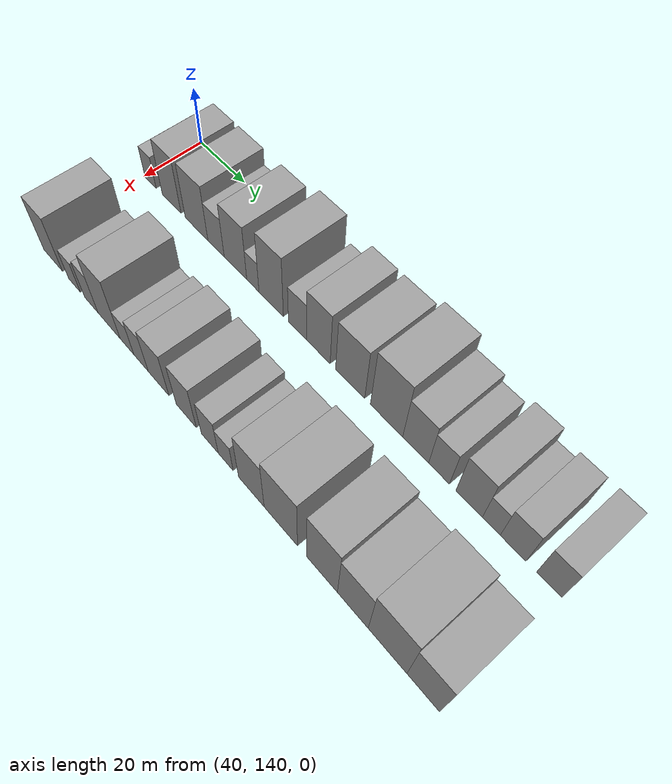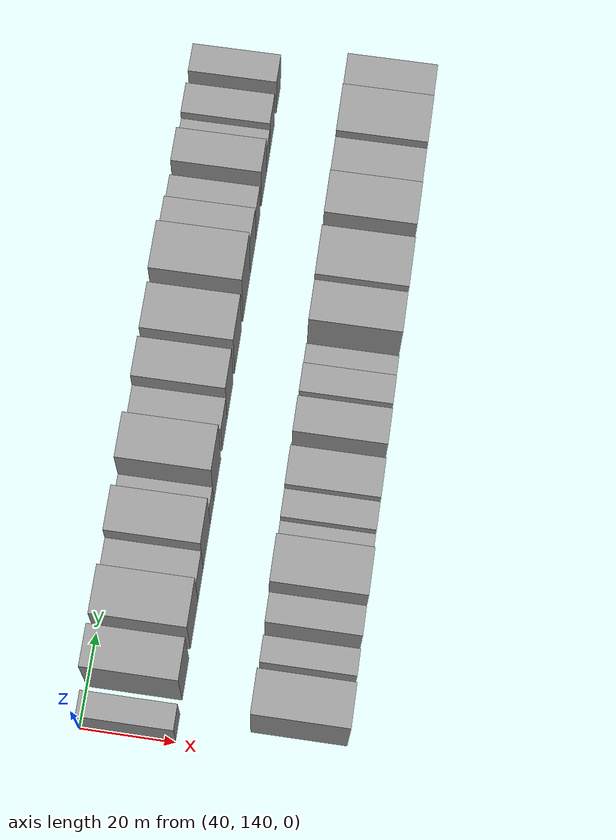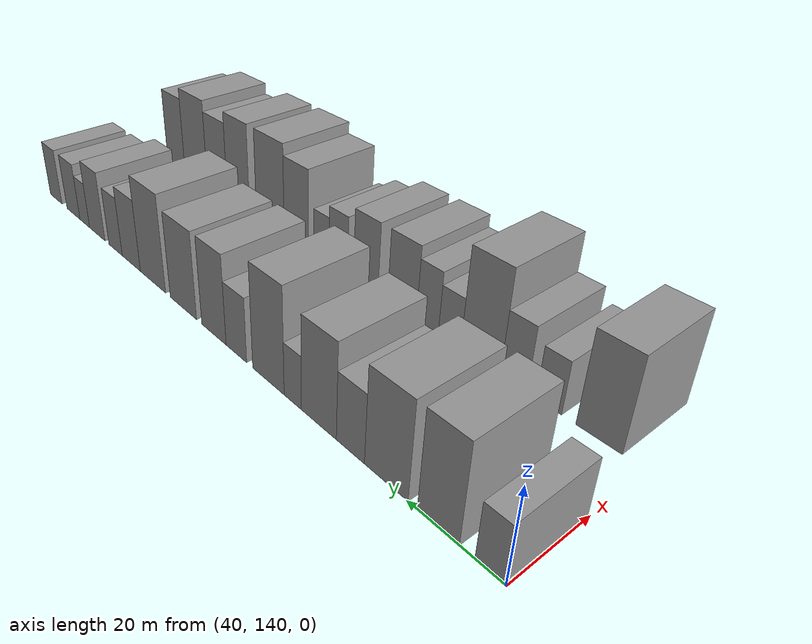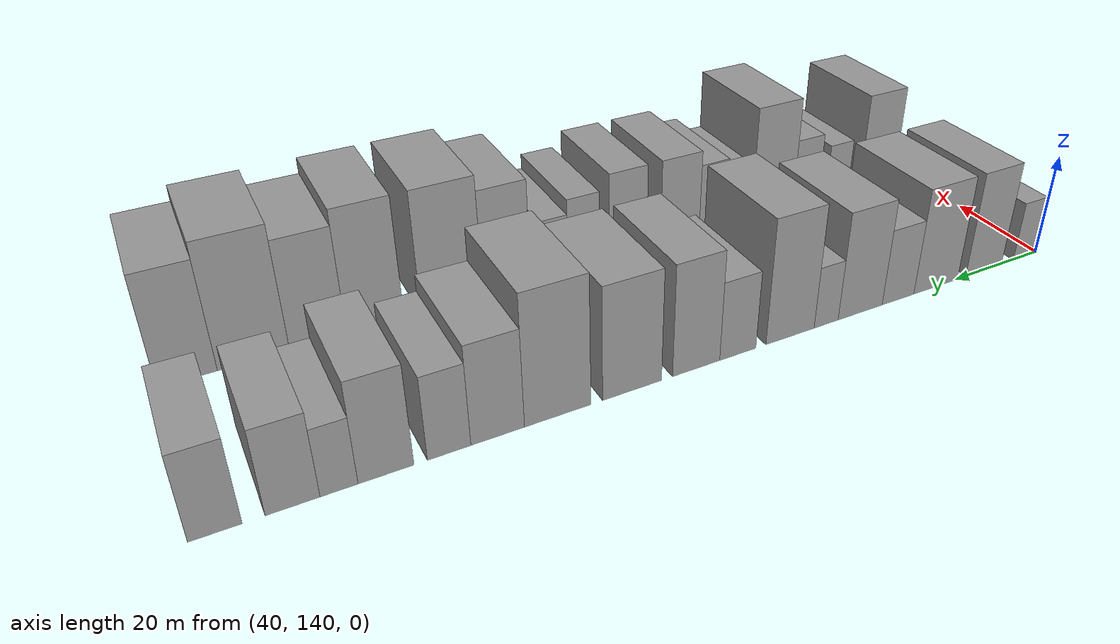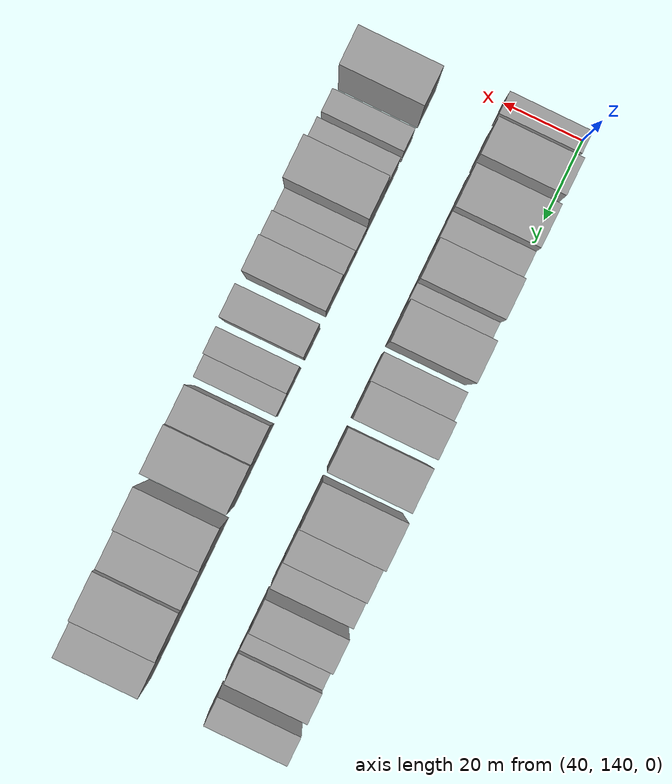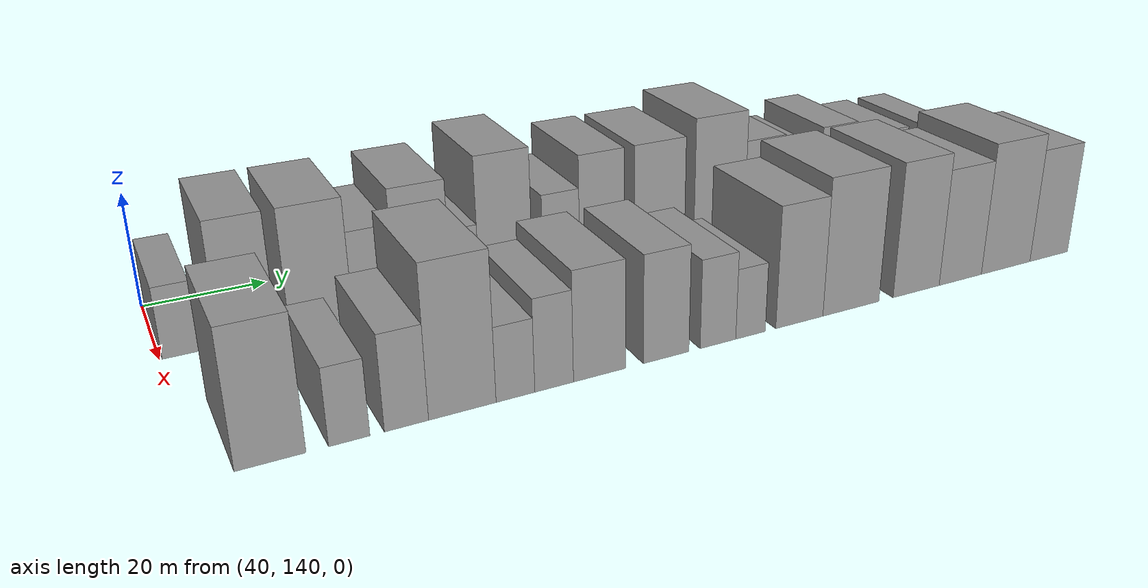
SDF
<sdf version="1.6">
 <world name="default">
  <model name="building_50">
   <static>1</static>
   <pose>50.0000 143.1332 0 0.000000 0.000000 0.000000</pose>
   <link name="link">
    <pose>0 0 6.00 0 0 0</pose>
    <collision name="collision"><geometry><box><size>20.0000 5.4177 12.0000</size></box></geometry></collision>
    <visual name="visual">
     <cast_shadows>0</cast_shadows>
     <geometry><box><size>20.0000 5.4177 12.0000</size></box></geometry>
     <material>
      <script>
       <uri>model://grey_wall/materials/scripts</uri>
       <uri>model://grey_wall/materials/textures</uri>
       <name>vrc/grey_wall</name>
      </script>
     </material>
    </visual>
   </link>
  </model>
  <model name="building_51">
   <static>1</static>
   <pose>50.0000 153.2381 0 0.000000 0.000000 0.000000</pose>
   <link name="link">
    <pose>0 0 10.50 0 0 0</pose>
    <collision name="collision"><geometry><box><size>20.0000 8.7923 21.0000</size></box></geometry></collision>
    <visual name="visual">
     <cast_shadows>0</cast_shadows>
     <geometry><box><size>20.0000 8.7923 21.0000</size></box></geometry>
     <material>
      <script>
       <uri>model://grey_wall/materials/scripts</uri>
       <uri>model://grey_wall/materials/textures</uri>
       <name>vrc/grey_wall</name>
      </script>
     </material>
    </visual>
   </link>
  </model>
  <model name="building_52">
   <static>1</static>
   <pose>50.0000 164.7484 0 0.000000 0.000000 0.000000</pose>
   <link name="link">
    <pose>0 0 10.50 0 0 0</pose>
    <collision name="collision"><geometry><box><size>20.0000 10.2283 21.0000</size></box></geometry></collision>
    <visual name="visual">
     <cast_shadows>0</cast_shadows>
     <geometry><box><size>20.0000 10.2283 21.0000</size></box></geometry>
     <material>
      <script>
       <uri>model://grey_wall/materials/scripts</uri>
       <uri>model://grey_wall/materials/textures</uri>
       <name>vrc/grey_wall</name>
      </script>
     </material>
    </visual>
   </link>
  </model>
  <model name="building_53">
   <static>1</static>
   <pose>50.0000 173.4440 0 0.000000 0.000000 0.000000</pose>
   <link name="link">
    <pose>0 0 7.50 0 0 0</pose>
    <collision name="collision"><geometry><box><size>20.0000 7.1629 15.0000</size></box></geometry></collision>
    <visual name="visual">
     <cast_shadows>0</cast_shadows>
     <geometry><box><size>20.0000 7.1629 15.0000</size></box></geometry>
     <material>
      <script>
       <uri>model://grey_wall/materials/scripts</uri>
       <uri>model://grey_wall/materials/textures</uri>
       <name>vrc/grey_wall</name>
      </script>
     </material>
    </visual>
   </link>
  </model>
  <model name="building_54">
   <static>1</static>
   <pose>50.0000 181.8233 0 0.000000 0.000000 0.000000</pose>
   <link name="link">
    <pose>0 0 10.50 0 0 0</pose>
    <collision name="collision"><geometry><box><size>20.0000 9.5958 21.0000</size></box></geometry></collision>
    <visual name="visual">
     <cast_shadows>0</cast_shadows>
     <geometry><box><size>20.0000 9.5958 21.0000</size></box></geometry>
     <material>
      <script>
       <uri>model://grey_wall/materials/scripts</uri>
       <uri>model://grey_wall/materials/textures</uri>
       <name>vrc/grey_wall</name>
      </script>
     </material>
    </visual>
   </link>
  </model>
  <model name="building_55">
   <static>1</static>
   <pose>50.0000 189.1549 0 0.000000 0.000000 0.000000</pose>
   <link name="link">
    <pose>0 0 6.00 0 0 0</pose>
    <collision name="collision"><geometry><box><size>20.0000 5.0674 12.0000</size></box></geometry></collision>
    <visual name="visual">
     <cast_shadows>0</cast_shadows>
     <geometry><box><size>20.0000 5.0674 12.0000</size></box></geometry>
     <material>
      <script>
       <uri>model://grey_wall/materials/scripts</uri>
       <uri>model://grey_wall/materials/textures</uri>
       <name>vrc/grey_wall</name>
      </script>
     </material>
    </visual>
   </link>
  </model>
  <model name="building_56">
   <static>1</static>
   <pose>50.0000 196.6018 0 0.000000 0.000000 0.000000</pose>
   <link name="link">
    <pose>0 0 12.00 0 0 0</pose>
    <collision name="collision"><geometry><box><size>20.0000 9.8264 24.0000</size></box></geometry></collision>
    <visual name="visual">
     <cast_shadows>0</cast_shadows>
     <geometry><box><size>20.0000 9.8264 24.0000</size></box></geometry>
     <material>
      <script>
       <uri>model://grey_wall/materials/scripts</uri>
       <uri>model://grey_wall/materials/textures</uri>
       <name>vrc/grey_wall</name>
      </script>
     </material>
    </visual>
   </link>
  </model>
  <model name="building_57">
   <static>1</static>
   <pose>50.0000 207.0331 0 0.000000 0.000000 0.000000</pose>
   <link name="link">
    <pose>0 0 7.50 0 0 0</pose>
    <collision name="collision"><geometry><box><size>20.0000 7.0361 15.0000</size></box></geometry></collision>
    <visual name="visual">
     <cast_shadows>0</cast_shadows>
     <geometry><box><size>20.0000 7.0361 15.0000</size></box></geometry>
     <material>
      <script>
       <uri>model://grey_wall/materials/scripts</uri>
       <uri>model://grey_wall/materials/textures</uri>
       <name>vrc/grey_wall</name>
      </script>
     </material>
    </visual>
   </link>
  </model>
  <model name="building_58">
   <static>1</static>
   <pose>50.0000 214.9701 0 0.000000 0.000000 0.000000</pose>
   <link name="link">
    <pose>0 0 10.50 0 0 0</pose>
    <collision name="collision"><geometry><box><size>20.0000 8.8380 21.0000</size></box></geometry></collision>
    <visual name="visual">
     <cast_shadows>0</cast_shadows>
     <geometry><box><size>20.0000 8.8380 21.0000</size></box></geometry>
     <material>
      <script>
       <uri>model://grey_wall/materials/scripts</uri>
       <uri>model://grey_wall/materials/textures</uri>
       <name>vrc/grey_wall</name>
      </script>
     </material>
    </visual>
   </link>
  </model>
  <model name="building_59">
   <static>1</static>
   <pose>50.0000 226.6173 0 0.000000 0.000000 0.000000</pose>
   <link name="link">
    <pose>0 0 10.50 0 0 0</pose>
    <collision name="collision"><geometry><box><size>20.0000 10.4563 21.0000</size></box></geometry></collision>
    <visual name="visual">
     <cast_shadows>0</cast_shadows>
     <geometry><box><size>20.0000 10.4563 21.0000</size></box></geometry>
     <material>
      <script>
       <uri>model://grey_wall/materials/scripts</uri>
       <uri>model://grey_wall/materials/textures</uri>
       <name>vrc/grey_wall</name>
      </script>
     </material>
    </visual>
   </link>
  </model>
  <model name="building_60">
   <static>1</static>
   <pose>50.0000 239.3656 0 0.000000 0.000000 0.000000</pose>
   <link name="link">
    <pose>0 0 12.00 0 0 0</pose>
    <collision name="collision"><geometry><box><size>20.0000 11.0403 24.0000</size></box></geometry></collision>
    <visual name="visual">
     <cast_shadows>0</cast_shadows>
     <geometry><box><size>20.0000 11.0403 24.0000</size></box></geometry>
     <material>
      <script>
       <uri>model://grey_wall/materials/scripts</uri>
       <uri>model://grey_wall/materials/textures</uri>
       <name>vrc/grey_wall</name>
      </script>
     </material>
    </visual>
   </link>
  </model>
  <model name="building_61">
   <static>1</static>
   <pose>50.0000 249.1334 0 0.000000 0.000000 0.000000</pose>
   <link name="link">
    <pose>0 0 9.00 0 0 0</pose>
    <collision name="collision"><geometry><box><size>20.0000 8.4952 18.0000</size></box></geometry></collision>
    <visual name="visual">
     <cast_shadows>0</cast_shadows>
     <geometry><box><size>20.0000 8.4952 18.0000</size></box></geometry>
     <material>
      <script>
       <uri>model://grey_wall/materials/scripts</uri>
       <uri>model://grey_wall/materials/textures</uri>
       <name>vrc/grey_wall</name>
      </script>
     </material>
    </visual>
   </link>
  </model>
  <model name="building_62">
   <static>1</static>
   <pose>50.0000 256.6926 0 0.000000 0.000000 0.000000</pose>
   <link name="link">
    <pose>0 0 7.50 0 0 0</pose>
    <collision name="collision"><geometry><box><size>20.0000 6.6233 15.0000</size></box></geometry></collision>
    <visual name="visual">
     <cast_shadows>0</cast_shadows>
     <geometry><box><size>20.0000 6.6233 15.0000</size></box></geometry>
     <material>
      <script>
       <uri>model://grey_wall/materials/scripts</uri>
       <uri>model://grey_wall/materials/textures</uri>
       <name>vrc/grey_wall</name>
      </script>
     </material>
    </visual>
   </link>
  </model>
  <model name="building_63">
   <static>1</static>
   <pose>50.0000 266.0494 0 0.000000 0.000000 0.000000</pose>
   <link name="link">
    <pose>0 0 9.00 0 0 0</pose>
    <collision name="collision"><geometry><box><size>20.0000 8.0903 18.0000</size></box></geometry></collision>
    <visual name="visual">
     <cast_shadows>0</cast_shadows>
     <geometry><box><size>20.0000 8.0903 18.0000</size></box></geometry>
     <material>
      <script>
       <uri>model://grey_wall/materials/scripts</uri>
       <uri>model://grey_wall/materials/textures</uri>
       <name>vrc/grey_wall</name>
      </script>
     </material>
    </visual>
   </link>
  </model>
  <model name="building_64">
   <static>1</static>
   <pose>50.0000 272.7504 0 0.000000 0.000000 0.000000</pose>
   <link name="link">
    <pose>0 0 6.00 0 0 0</pose>
    <collision name="collision"><geometry><box><size>20.0000 5.3117 12.0000</size></box></geometry></collision>
    <visual name="visual">
     <cast_shadows>0</cast_shadows>
     <geometry><box><size>20.0000 5.3117 12.0000</size></box></geometry>
     <material>
      <script>
       <uri>model://grey_wall/materials/scripts</uri>
       <uri>model://grey_wall/materials/textures</uri>
       <name>vrc/grey_wall</name>
      </script>
     </material>
    </visual>
   </link>
  </model>
  <model name="building_65">
   <static>1</static>
   <pose>50.0000 279.1155 0 0.000000 0.000000 0.000000</pose>
   <link name="link">
    <pose>0 0 7.50 0 0 0</pose>
    <collision name="collision"><geometry><box><size>20.0000 7.4184 15.0000</size></box></geometry></collision>
    <visual name="visual">
     <cast_shadows>0</cast_shadows>
     <geometry><box><size>20.0000 7.4184 15.0000</size></box></geometry>
     <material>
      <script>
       <uri>model://grey_wall/materials/scripts</uri>
       <uri>model://grey_wall/materials/textures</uri>
       <name>vrc/grey_wall</name>
      </script>
     </material>
    </visual>
   </link>
  </model>
  <model name="building_66">
   <static>1</static>
   <pose>50.0000 289.3066 0 0.000000 0.000000 0.000000</pose>
   <link name="link">
    <pose>0 0 7.50 0 0 0</pose>
    <collision name="collision"><geometry><box><size>20.0000 6.9639 15.0000</size></box></geometry></collision>
    <visual name="visual">
     <cast_shadows>0</cast_shadows>
     <geometry><box><size>20.0000 6.9639 15.0000</size></box></geometry>
     <material>
      <script>
       <uri>model://grey_wall/materials/scripts</uri>
       <uri>model://grey_wall/materials/textures</uri>
       <name>vrc/grey_wall</name>
      </script>
     </material>
    </visual>
   </link>
  </model>
  <model name="building_114">
   <static>1</static>
   <pose>85.0000 149.0062 0 0.000000 0.000000 0.000000</pose>
   <link name="link">
    <pose>0 0 10.50 0 0 0</pose>
    <collision name="collision"><geometry><box><size>20.0000 9.2929 21.0000</size></box></geometry></collision>
    <visual name="visual">
     <cast_shadows>0</cast_shadows>
     <geometry><box><size>20.0000 9.2929 21.0000</size></box></geometry>
     <material>
      <script>
       <uri>model://grey_wall/materials/scripts</uri>
       <uri>model://grey_wall/materials/textures</uri>
       <name>vrc/grey_wall</name>
      </script>
     </material>
    </visual>
   </link>
  </model>
  <model name="building_115">
   <static>1</static>
   <pose>85.0000 159.4780 0 0.000000 0.000000 0.000000</pose>
   <link name="link">
    <pose>0 0 6.00 0 0 0</pose>
    <collision name="collision"><geometry><box><size>20.0000 5.6508 12.0000</size></box></geometry></collision>
    <visual name="visual">
     <cast_shadows>0</cast_shadows>
     <geometry><box><size>20.0000 5.6508 12.0000</size></box></geometry>
     <material>
      <script>
       <uri>model://grey_wall/materials/scripts</uri>
       <uri>model://grey_wall/materials/textures</uri>
       <name>vrc/grey_wall</name>
      </script>
     </material>
    </visual>
   </link>
  </model>
  <model name="building_116">
   <static>1</static>
   <pose>85.0000 167.4500 0 0.000000 0.000000 0.000000</pose>
   <link name="link">
    <pose>0 0 7.50 0 0 0</pose>
    <collision name="collision"><geometry><box><size>20.0000 6.2932 15.0000</size></box></geometry></collision>
    <visual name="visual">
     <cast_shadows>0</cast_shadows>
     <geometry><box><size>20.0000 6.2932 15.0000</size></box></geometry>
     <material>
      <script>
       <uri>model://grey_wall/materials/scripts</uri>
       <uri>model://grey_wall/materials/textures</uri>
       <name>vrc/grey_wall</name>
      </script>
     </material>
    </visual>
   </link>
  </model>
  <model name="building_117">
   <static>1</static>
   <pose>85.0000 175.6063 0 0.000000 0.000000 0.000000</pose>
   <link name="link">
    <pose>0 0 12.00 0 0 0</pose>
    <collision name="collision"><geometry><box><size>20.0000 10.0194 24.0000</size></box></geometry></collision>
    <visual name="visual">
     <cast_shadows>0</cast_shadows>
     <geometry><box><size>20.0000 10.0194 24.0000</size></box></geometry>
     <material>
      <script>
       <uri>model://grey_wall/materials/scripts</uri>
       <uri>model://grey_wall/materials/textures</uri>
       <name>vrc/grey_wall</name>
      </script>
     </material>
    </visual>
   </link>
  </model>
  <model name="building_118">
   <static>1</static>
   <pose>85.0000 183.6101 0 0.000000 0.000000 0.000000</pose>
   <link name="link">
    <pose>0 0 6.00 0 0 0</pose>
    <collision name="collision"><geometry><box><size>20.0000 5.9882 12.0000</size></box></geometry></collision>
    <visual name="visual">
     <cast_shadows>0</cast_shadows>
     <geometry><box><size>20.0000 5.9882 12.0000</size></box></geometry>
     <material>
      <script>
       <uri>model://grey_wall/materials/scripts</uri>
       <uri>model://grey_wall/materials/textures</uri>
       <name>vrc/grey_wall</name>
      </script>
     </material>
    </visual>
   </link>
  </model>
  <model name="building_119">
   <static>1</static>
   <pose>85.0000 189.6781 0 0.000000 0.000000 0.000000</pose>
   <link name="link">
    <pose>0 0 7.50 0 0 0</pose>
    <collision name="collision"><geometry><box><size>20.0000 6.1480 15.0000</size></box></geometry></collision>
    <visual name="visual">
     <cast_shadows>0</cast_shadows>
     <geometry><box><size>20.0000 6.1480 15.0000</size></box></geometry>
     <material>
      <script>
       <uri>model://grey_wall/materials/scripts</uri>
       <uri>model://grey_wall/materials/textures</uri>
       <name>vrc/grey_wall</name>
      </script>
     </material>
    </visual>
   </link>
  </model>
  <model name="building_120">
   <static>1</static>
   <pose>85.0000 197.0523 0 0.000000 0.000000 0.000000</pose>
   <link name="link">
    <pose>0 0 9.00 0 0 0</pose>
    <collision name="collision"><geometry><box><size>20.0000 8.6003 18.0000</size></box></geometry></collision>
    <visual name="visual">
     <cast_shadows>0</cast_shadows>
     <geometry><box><size>20.0000 8.6003 18.0000</size></box></geometry>
     <material>
      <script>
       <uri>model://grey_wall/materials/scripts</uri>
       <uri>model://grey_wall/materials/textures</uri>
       <name>vrc/grey_wall</name>
      </script>
     </material>
    </visual>
   </link>
  </model>
  <model name="building_121">
   <static>1</static>
   <pose>85.0000 208.3260 0 0.000000 0.000000 0.000000</pose>
   <link name="link">
    <pose>0 0 9.00 0 0 0</pose>
    <collision name="collision"><geometry><box><size>20.0000 7.9471 18.0000</size></box></geometry></collision>
    <visual name="visual">
     <cast_shadows>0</cast_shadows>
     <geometry><box><size>20.0000 7.9471 18.0000</size></box></geometry>
     <material>
      <script>
       <uri>model://grey_wall/materials/scripts</uri>
       <uri>model://grey_wall/materials/textures</uri>
       <name>vrc/grey_wall</name>
      </script>
     </material>
    </visual>
   </link>
  </model>
  <model name="building_122">
   <static>1</static>
   <pose>85.0000 217.5419 0 0.000000 0.000000 0.000000</pose>
   <link name="link">
    <pose>0 0 7.50 0 0 0</pose>
    <collision name="collision"><geometry><box><size>20.0000 6.4848 15.0000</size></box></geometry></collision>
    <visual name="visual">
     <cast_shadows>0</cast_shadows>
     <geometry><box><size>20.0000 6.4848 15.0000</size></box></geometry>
     <material>
      <script>
       <uri>model://grey_wall/materials/scripts</uri>
       <uri>model://grey_wall/materials/textures</uri>
       <name>vrc/grey_wall</name>
      </script>
     </material>
    </visual>
   </link>
  </model>
  <model name="building_123">
   <static>1</static>
   <pose>85.0000 223.5362 0 0.000000 0.000000 0.000000</pose>
   <link name="link">
    <pose>0 0 6.00 0 0 0</pose>
    <collision name="collision"><geometry><box><size>20.0000 5.5038 12.0000</size></box></geometry></collision>
    <visual name="visual">
     <cast_shadows>0</cast_shadows>
     <geometry><box><size>20.0000 5.5038 12.0000</size></box></geometry>
     <material>
      <script>
       <uri>model://grey_wall/materials/scripts</uri>
       <uri>model://grey_wall/materials/textures</uri>
       <name>vrc/grey_wall</name>
      </script>
     </material>
    </visual>
   </link>
  </model>
  <model name="building_124">
   <static>1</static>
   <pose>85.0000 232.8861 0 0.000000 0.000000 0.000000</pose>
   <link name="link">
    <pose>0 0 10.50 0 0 0</pose>
    <collision name="collision"><geometry><box><size>20.0000 9.1961 21.0000</size></box></geometry></collision>
    <visual name="visual">
     <cast_shadows>0</cast_shadows>
     <geometry><box><size>20.0000 9.1961 21.0000</size></box></geometry>
     <material>
      <script>
       <uri>model://grey_wall/materials/scripts</uri>
       <uri>model://grey_wall/materials/textures</uri>
       <name>vrc/grey_wall</name>
      </script>
     </material>
    </visual>
   </link>
  </model>
  <model name="building_125">
   <static>1</static>
   <pose>85.0000 243.1941 0 0.000000 0.000000 0.000000</pose>
   <link name="link">
    <pose>0 0 12.00 0 0 0</pose>
    <collision name="collision"><geometry><box><size>20.0000 11.4200 24.0000</size></box></geometry></collision>
    <visual name="visual">
     <cast_shadows>0</cast_shadows>
     <geometry><box><size>20.0000 11.4200 24.0000</size></box></geometry>
     <material>
      <script>
       <uri>model://grey_wall/materials/scripts</uri>
       <uri>model://grey_wall/materials/textures</uri>
       <name>vrc/grey_wall</name>
      </script>
     </material>
    </visual>
   </link>
  </model>
  <model name="building_126">
   <static>1</static>
   <pose>85.0000 256.8920 0 0.000000 0.000000 0.000000</pose>
   <link name="link">
    <pose>0 0 12.00 0 0 0</pose>
    <collision name="collision"><geometry><box><size>20.0000 9.9758 24.0000</size></box></geometry></collision>
    <visual name="visual">
     <cast_shadows>0</cast_shadows>
     <geometry><box><size>20.0000 9.9758 24.0000</size></box></geometry>
     <material>
      <script>
       <uri>model://grey_wall/materials/scripts</uri>
       <uri>model://grey_wall/materials/textures</uri>
       <name>vrc/grey_wall</name>
      </script>
     </material>
    </visual>
   </link>
  </model>
  <model name="building_127">
   <static>1</static>
   <pose>85.0000 266.6346 0 0.000000 0.000000 0.000000</pose>
   <link name="link">
    <pose>0 0 10.50 0 0 0</pose>
    <collision name="collision"><geometry><box><size>20.0000 9.5093 21.0000</size></box></geometry></collision>
    <visual name="visual">
     <cast_shadows>0</cast_shadows>
     <geometry><box><size>20.0000 9.5093 21.0000</size></box></geometry>
     <material>
      <script>
       <uri>model://grey_wall/materials/scripts</uri>
       <uri>model://grey_wall/materials/textures</uri>
       <name>vrc/grey_wall</name>
      </script>
     </material>
    </visual>
   </link>
  </model>
  <model name="building_128">
   <static>1</static>
   <pose>85.0000 277.1054 0 0.000000 0.000000 0.000000</pose>
   <link name="link">
    <pose>0 0 12.00 0 0 0</pose>
    <collision name="collision"><geometry><box><size>20.0000 11.4323 24.0000</size></box></geometry></collision>
    <visual name="visual">
     <cast_shadows>0</cast_shadows>
     <geometry><box><size>20.0000 11.4323 24.0000</size></box></geometry>
     <material>
      <script>
       <uri>model://grey_wall/materials/scripts</uri>
       <uri>model://grey_wall/materials/textures</uri>
       <name>vrc/grey_wall</name>
      </script>
     </material>
    </visual>
   </link>
  </model>
  <model name="building_129">
   <static>1</static>
   <pose>85.0000 287.4214 0 0.000000 0.000000 0.000000</pose>
   <link name="link">
    <pose>0 0 10.50 0 0 0</pose>
    <collision name="collision"><geometry><box><size>20.0000 9.1997 21.0000</size></box></geometry></collision>
    <visual name="visual">
     <cast_shadows>0</cast_shadows>
     <geometry><box><size>20.0000 9.1997 21.0000</size></box></geometry>
     <material>
      <script>
       <uri>model://grey_wall/materials/scripts</uri>
       <uri>model://grey_wall/materials/textures</uri>
       <name>vrc/grey_wall</name>
      </script>
     </material>
    </visual>
   </link>
  </model>
 </world>
</sdf>
